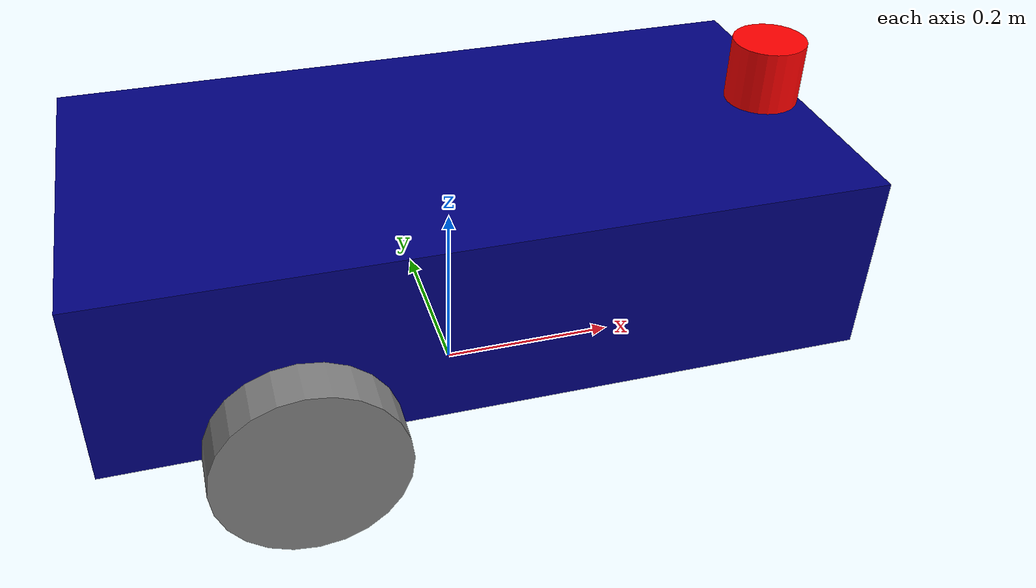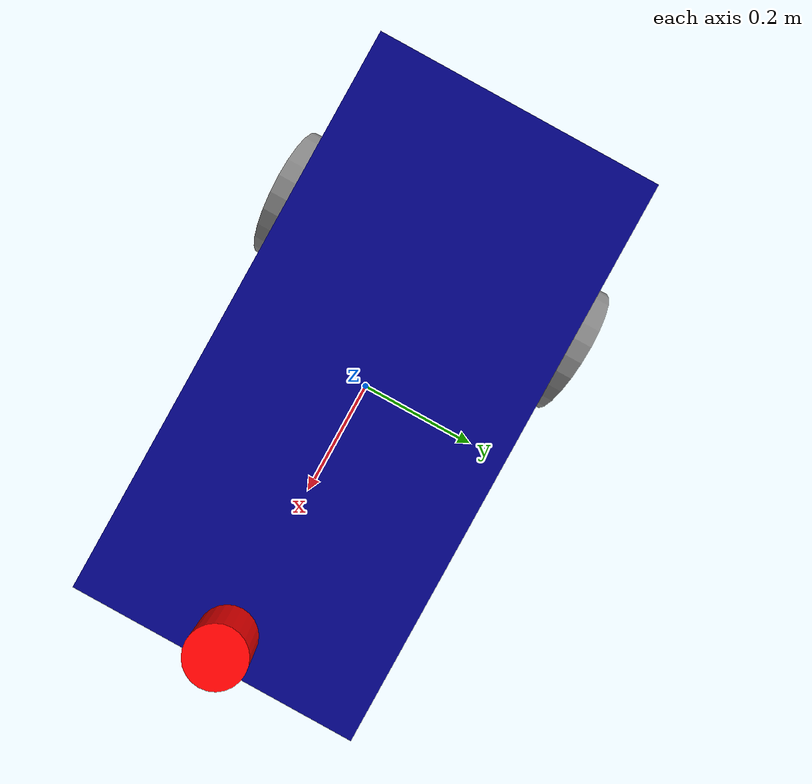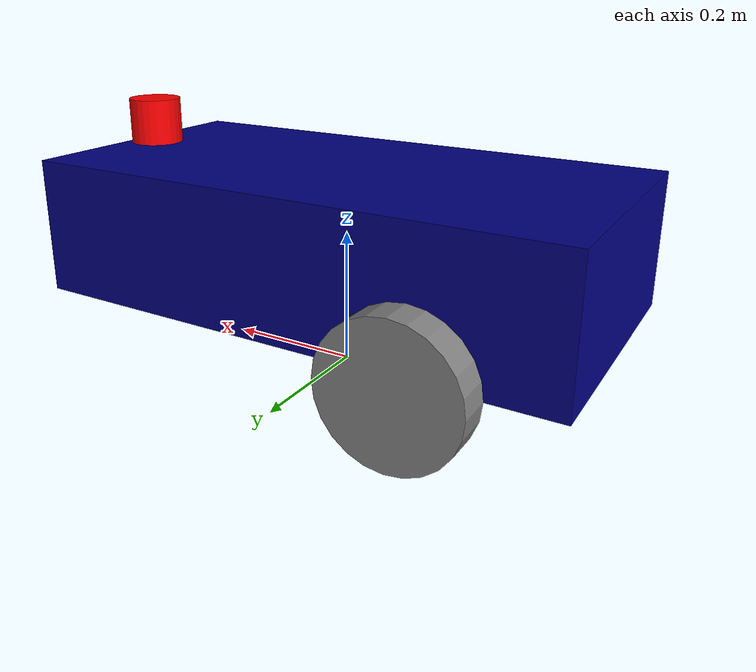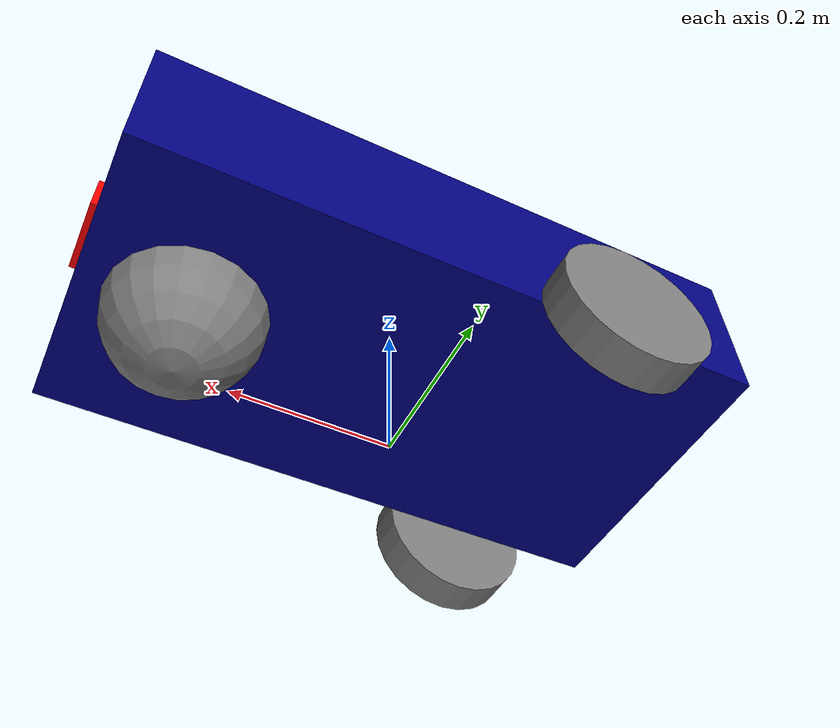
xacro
<?xml version="1.0"?>
<robot xmlns:xacro="http://www.ros.org/wiki/xacro" name="diff_robot">

  <xacro:include filename="$(find diff_robot_description)/urdf/diff_robot_description.urdf.xacro" />

  <xacro:include filename="$(find diff_robot_control)/ros2_control/diff_robot.ros2_control.xacro" />

  <xacro:include filename="$(find diff_robot_control)/urdf/diff_robot.gazebo.xacro" />

</robot>

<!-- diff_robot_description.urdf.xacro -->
<robot xmlns:xacro="http://www.ros.org/wiki/xacro">

    <xacro:include filename="diff_robot.materials.xacro" />

    <xacro:property name="base_length" value="0.8" />
    <xacro:property name="base_width" value="0.4" />
    <xacro:property name="base_height" value="0.2" />
    <xacro:property name="base_mass" value="5.0" /> <!--Kg-->
    <xacro:property name="wheel_mass" value="1.0" />
    <xacro:property name="wheel_radius" value="0.1" />
    <xacro:property name="wheel_length" value="0.05" />

    <!--LINK-->
    <link name="base_footprint" />

    <link name="base_link">
        <visual>
            <geometry>
                <box size="${base_length} ${base_width} ${base_height}" />
            </geometry>
            <origin xyz="0 0 ${base_height / 2.0}" rpy="0 0 0" />
            <material name="blue" />
        </visual>
        <xacro:box_collision l="${base_length}" w="${base_width}" h="${base_height}" xyz="0 0 ${base_height / 2.0}" rpy="0 0 0" />
        <xacro:box_inertia m="${base_mass}" l="${2*base_length}" w="${2*base_width}" h="${2*base_height}"
                           xyz="0 0 ${base_height / 2.0}" rpy="0 0 0"/>
    </link>

    <xacro:macro name="wheel_link" params="prefix">
        <link name="${prefix}_wheel_link">
            <visual>
                <geometry>
                    <cylinder radius="${wheel_radius}" length="${wheel_length}" />
                </geometry>
                <origin xyz="0 0 0" rpy="${pi / 2.0} 0 0" />
                <material name="grey" />
            </visual>
            <xacro:cylinder_collision r="${wheel_radius}" l="${wheel_length}" xyz="0 0 0" rpy="${pi / 2.0} 0 0" />
            <xacro:cylinder_inertia m="${wheel_mass}" r="${2*wheel_radius}" l="${2*wheel_length}"
                                    xyz="0 0 0" rpy="${pi / 2.0} 0 0" />
        </link>
    </xacro:macro>

    <xacro:wheel_link prefix="back_r" />
    <xacro:wheel_link prefix="back_l" />

    <link name="front_caster">
        <visual>
          <geometry>
             <sphere radius="${wheel_radius}"/>
             <origin xyz="0.0 0.0 0.0" rpy="0.0 0.0 0.0"/>
          </geometry>
          <material name="grey" />
        </visual>
        <collision>
            <geometry>
                <sphere radius="0.1"/>
            </geometry>
        </collision>
        <inertial>
          <origin xyz="0.0 0.0 0.0" rpy="0.0 0.0 0.0"/>
          <mass value="0.1" />
          <inertia ixx="1.0" ixy="0.0" ixz="0.0" iyy="1.0" iyz="0.0" izz="1.0" />
        </inertial>
    </link>

    <!--JOINT-->
    <joint name="base_joint" type="fixed">
        <parent link="base_footprint" />
        <child link="base_link" />
        <origin xyz="0 0 ${wheel_radius}" rpy="0 0 0"/>
    </joint>

    <joint name="caster_joint" type="fixed">
        <parent link="base_link" />
        <child link="front_caster" />
        <origin xyz="${base_length / 3.0} 0 0" rpy="0 0 0"/>
    </joint>

    <!--BACK WHEEL JOINTS-->
    <joint name="base_back_r_wheel_joint" type="continuous">
        <parent link="base_link" />
        <child link="back_r_wheel_link" />
        <origin xyz="${-base_length / 4.0} ${-(base_width + wheel_length) / 2.0} 0" rpy="0 0 0" />
        <axis xyz="0 1 0" />
    </joint>

    <joint name="base_back_l_wheel_joint" type="continuous">
        <parent link="base_link" />
        <child link="back_l_wheel_link" />
        <origin xyz="${-base_length / 4.0} ${(base_width + wheel_length) / 2.0} 0" rpy="0 0 0" />
        <axis xyz="0 1 0" />
    </joint>

    <!-- ***camera config*** -->
    <xacro:property name="camera_length" value="0.01" />
    <xacro:property name="camera_width" value="0.1" />
    <xacro:property name="camera_height" value="0.05" />

    <link name="camera_link">
        <visual>
            <geometry>
                <box size="${camera_length} ${camera_width} ${camera_height}" />
            </geometry>
            <material name="red" />
        </visual>
        <collision>
            <geometry>
                <box size="${camera_length} ${camera_width} ${camera_height}" />
            </geometry>
        </collision>
        <xacro:box_inertia m="0.1" l="${camera_length}" w="${camera_width}" h="${camera_height}" xyz="0 0 0" rpy="0 0 0" />
    </link>

    <joint name="base_camera_joint" type="fixed">
        <parent link="base_link" />
        <child link="camera_link" />
        <origin xyz="${(base_length + camera_length) / 2} 0 ${base_height / 2}" rpy="0 0 0" />
    </joint>

    <!-- ***lidar config*** -->
    <xacro:property name="lidar_length" value="0.07" />
    <xacro:property name="lidar_radius" value="0.04" />

    <link name="lidar_link">
        <visual>
            <geometry>
                <cylinder radius="${lidar_radius}" length="${lidar_length}" />
            </geometry>
            <material name="red" />
        </visual>
        <collision>
            <geometry>
                <cylinder radius="${lidar_radius}" length="${lidar_length}" />
            </geometry>
        </collision>
        <xacro:cylinder_inertia m="0.4" r="${lidar_radius}" l="${lidar_length}" xyz="0 0 0" rpy="0 0 0" />
    </link>

    <joint name="base_lidar_joint" type="fixed">
        <parent link="base_link" />
        <child link="lidar_link" />
        <origin xyz="${base_length / 2 - lidar_radius} 0 ${base_height + lidar_length / 2}" rpy="0 0 0" />
    </joint>

    <!-- ***IMU*** -->
    <xacro:property name="imu_length" value="0.05" />
    <xacro:property name="imu_width" value="0.05" />
    <xacro:property name="imu_height" value="0.05" />

    <link name="imu_link">
	<visual>
	     <geometry>
		     <box size="${imu_length} ${imu_width} ${imu_height}" />
    	     </geometry>
	</visual>
	<collision>
	     <geometry>
		     <box size="${imu_length} ${imu_width} ${imu_height}" />
             </geometry>
        </collision>
        <xacro:box_inertia m="0.1" l="${imu_length}" w="${imu_width}" h="${imu_height}" xyz="0 0 0" rpy="0 0 0"/>
     </link>

     <joint name="imu_joint" type="fixed">
        <parent link="base_link"/>
         <child link="imu_link"/>
         <origin xyz="0 0 0.05"/>
      </joint>

</robot>

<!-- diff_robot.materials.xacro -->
<robot xmlns:xacro="http://www.ros.org/wiki/xacro">

    <!--__________Material__________-->
    <material name="yellow">
        <color rgba="0.8 0.3 0.1 0.5" />
    </material>

    <material name="black">
        <color rgba="0.0 0.0 0.0 1.0" />
    </material>

    <material name="blue">
        <color rgba="0 0 0.5 1" />
    </material>

    <material name="grey">
        <color rgba="0.5 0.5 0.5 1" />
    </material>

    <material name="red">
        <color rgba="1 0 0 1" />
    </material>

    <!--__________Inertial tag__________-->
    <xacro:macro name="box_inertia" params="m l w h xyz rpy">
        <inertial>
            <origin xyz="${xyz}" rpy="${rpy}"/>
            <mass value="${m}" />
            <inertia ixx="${(m/12)*(h*h+l*l)}" ixy="0" ixz="0"
                     iyy="${(m/12)*(w*w+l*l)}" iyz="0"
                     izz="${(m/12)*(w*w+h*h)}" />
        </inertial>
    </xacro:macro>

    <xacro:macro name="cylinder_inertia" params="m r l xyz rpy">
        <inertial>
            <origin xyz="${xyz}" rpy="${rpy}"/>
            <mass value="${m}" />
            <inertia ixx="${(m/12)*(3*r*r+l*l)}" ixy="0" ixz="0"
                     iyy="${(m/12)*(3*r*r+l*l)}" iyz="0"
                     izz="${(m*r*r)/2}" />
        </inertial>
    </xacro:macro>

    <!--__________Collision__________-->
    <xacro:macro name="box_collision" params="l w h xyz rpy">
        <collision>
            <geometry>
                <box size="${l} ${w} ${h}" />
            </geometry>
            <origin xyz="${xyz}" rpy="${rpy}" />
        </collision>
    </xacro:macro>

    <xacro:macro name="cylinder_collision" params="r l xyz rpy">
        <collision>
            <geometry>
                <cylinder radius="${r}" length="${l}" />
            </geometry>
            <origin xyz="${xyz}" rpy="${rpy}" />
        </collision>
    </xacro:macro>

</robot>
